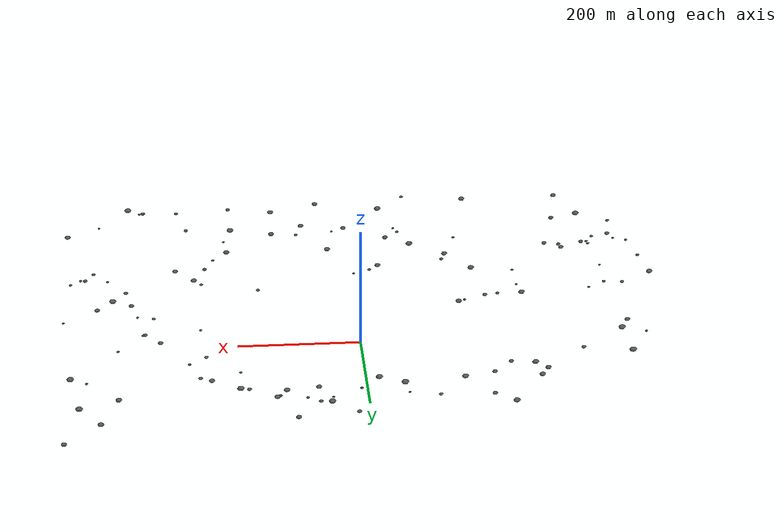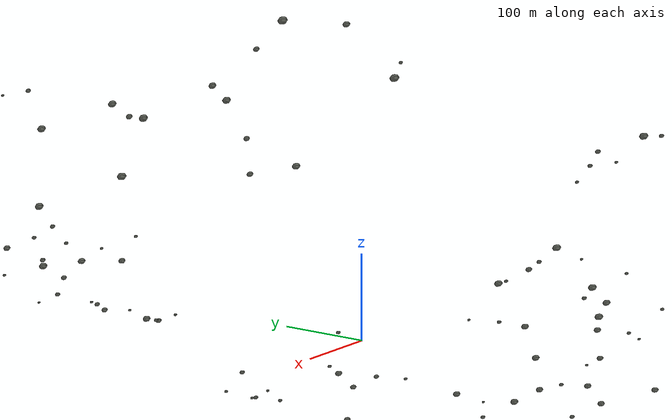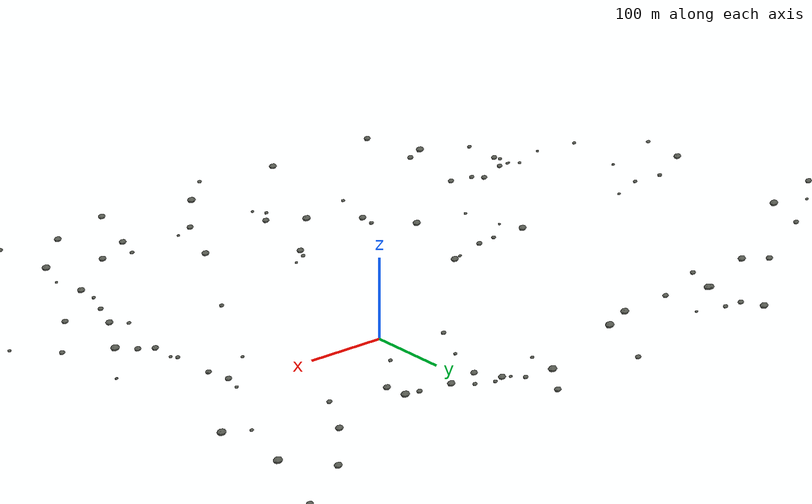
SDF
<?xml version='1.0' encoding='utf-8'?>
<sdf version="1.9">
  <model name="summit_boulders">
    <static>true</static>
    <link name="structure">
      <visual name="visual_rock">
        <geometry>
          <mesh>
            <uri>model://summit_boulders/meshes/visual/rock.dae</uri>
          </mesh>
        </geometry>
        <material>
          <ambient>0.34 0.355 0.32 1</ambient>
          <diffuse>0.34 0.355 0.32 1</diffuse>
          <specular>0.15 0.15 0.15 1</specular>
          <pbr>
            <metal>
              <roughness>0.8</roughness>
              <metalness>0.0</metalness>
            </metal>
          </pbr>
        </material>
      </visual>
      <collision name="outcrop_1">
        <geometry>
          <mesh>
            <uri>model://summit_boulders/meshes/collision/outcrop_1.dae</uri>
          </mesh>
        </geometry>
      </collision>
      <collision name="outcrop_2">
        <geometry>
          <mesh>
            <uri>model://summit_boulders/meshes/collision/outcrop_2.dae</uri>
          </mesh>
        </geometry>
      </collision>
      <collision name="outcrop_3">
        <geometry>
          <mesh>
            <uri>model://summit_boulders/meshes/collision/outcrop_3.dae</uri>
          </mesh>
        </geometry>
      </collision>
      <collision name="outcrop_6">
        <geometry>
          <mesh>
            <uri>model://summit_boulders/meshes/collision/outcrop_6.dae</uri>
          </mesh>
        </geometry>
      </collision>
      <collision name="outcrop_7">
        <geometry>
          <mesh>
            <uri>model://summit_boulders/meshes/collision/outcrop_7.dae</uri>
          </mesh>
        </geometry>
      </collision>
      <collision name="outcrop_8">
        <geometry>
          <mesh>
            <uri>model://summit_boulders/meshes/collision/outcrop_8.dae</uri>
          </mesh>
        </geometry>
      </collision>
      <collision name="outcrop_9">
        <geometry>
          <mesh>
            <uri>model://summit_boulders/meshes/collision/outcrop_9.dae</uri>
          </mesh>
        </geometry>
      </collision>
      <collision name="outcrop_10">
        <geometry>
          <mesh>
            <uri>model://summit_boulders/meshes/collision/outcrop_10.dae</uri>
          </mesh>
        </geometry>
      </collision>
      <collision name="outcrop_12">
        <geometry>
          <mesh>
            <uri>model://summit_boulders/meshes/collision/outcrop_12.dae</uri>
          </mesh>
        </geometry>
      </collision>
      <collision name="outcrop_14">
        <geometry>
          <mesh>
            <uri>model://summit_boulders/meshes/collision/outcrop_14.dae</uri>
          </mesh>
        </geometry>
      </collision>
      <collision name="outcrop_15">
        <geometry>
          <mesh>
            <uri>model://summit_boulders/meshes/collision/outcrop_15.dae</uri>
          </mesh>
        </geometry>
      </collision>
      <collision name="outcrop_16">
        <geometry>
          <mesh>
            <uri>model://summit_boulders/meshes/collision/outcrop_16.dae</uri>
          </mesh>
        </geometry>
      </collision>
      <collision name="outcrop_17">
        <geometry>
          <mesh>
            <uri>model://summit_boulders/meshes/collision/outcrop_17.dae</uri>
          </mesh>
        </geometry>
      </collision>
      <collision name="outcrop_18">
        <geometry>
          <mesh>
            <uri>model://summit_boulders/meshes/collision/outcrop_18.dae</uri>
          </mesh>
        </geometry>
      </collision>
      <collision name="outcrop_19">
        <geometry>
          <mesh>
            <uri>model://summit_boulders/meshes/collision/outcrop_19.dae</uri>
          </mesh>
        </geometry>
      </collision>
      <collision name="outcrop_20">
        <geometry>
          <mesh>
            <uri>model://summit_boulders/meshes/collision/outcrop_20.dae</uri>
          </mesh>
        </geometry>
      </collision>
      <collision name="outcrop_21">
        <geometry>
          <mesh>
            <uri>model://summit_boulders/meshes/collision/outcrop_21.dae</uri>
          </mesh>
        </geometry>
      </collision>
      <collision name="outcrop_23">
        <geometry>
          <mesh>
            <uri>model://summit_boulders/meshes/collision/outcrop_23.dae</uri>
          </mesh>
        </geometry>
      </collision>
      <collision name="outcrop_24">
        <geometry>
          <mesh>
            <uri>model://summit_boulders/meshes/collision/outcrop_24.dae</uri>
          </mesh>
        </geometry>
      </collision>
      <collision name="outcrop_25">
        <geometry>
          <mesh>
            <uri>model://summit_boulders/meshes/collision/outcrop_25.dae</uri>
          </mesh>
        </geometry>
      </collision>
      <collision name="outcrop_26">
        <geometry>
          <mesh>
            <uri>model://summit_boulders/meshes/collision/outcrop_26.dae</uri>
          </mesh>
        </geometry>
      </collision>
      <collision name="outcrop_27">
        <geometry>
          <mesh>
            <uri>model://summit_boulders/meshes/collision/outcrop_27.dae</uri>
          </mesh>
        </geometry>
      </collision>
      <collision name="outcrop_29">
        <geometry>
          <mesh>
            <uri>model://summit_boulders/meshes/collision/outcrop_29.dae</uri>
          </mesh>
        </geometry>
      </collision>
      <collision name="outcrop_30">
        <geometry>
          <mesh>
            <uri>model://summit_boulders/meshes/collision/outcrop_30.dae</uri>
          </mesh>
        </geometry>
      </collision>
      <collision name="outcrop_31">
        <geometry>
          <mesh>
            <uri>model://summit_boulders/meshes/collision/outcrop_31.dae</uri>
          </mesh>
        </geometry>
      </collision>
      <collision name="outcrop_32">
        <geometry>
          <mesh>
            <uri>model://summit_boulders/meshes/collision/outcrop_32.dae</uri>
          </mesh>
        </geometry>
      </collision>
      <collision name="outcrop_33">
        <geometry>
          <mesh>
            <uri>model://summit_boulders/meshes/collision/outcrop_33.dae</uri>
          </mesh>
        </geometry>
      </collision>
      <collision name="outcrop_34">
        <geometry>
          <mesh>
            <uri>model://summit_boulders/meshes/collision/outcrop_34.dae</uri>
          </mesh>
        </geometry>
      </collision>
      <collision name="outcrop_35">
        <geometry>
          <mesh>
            <uri>model://summit_boulders/meshes/collision/outcrop_35.dae</uri>
          </mesh>
        </geometry>
      </collision>
      <collision name="outcrop_36">
        <geometry>
          <mesh>
            <uri>model://summit_boulders/meshes/collision/outcrop_36.dae</uri>
          </mesh>
        </geometry>
      </collision>
      <collision name="outcrop_37">
        <geometry>
          <mesh>
            <uri>model://summit_boulders/meshes/collision/outcrop_37.dae</uri>
          </mesh>
        </geometry>
      </collision>
      <collision name="outcrop_39">
        <geometry>
          <mesh>
            <uri>model://summit_boulders/meshes/collision/outcrop_39.dae</uri>
          </mesh>
        </geometry>
      </collision>
      <collision name="outcrop_40">
        <geometry>
          <mesh>
            <uri>model://summit_boulders/meshes/collision/outcrop_40.dae</uri>
          </mesh>
        </geometry>
      </collision>
      <collision name="outcrop_41">
        <geometry>
          <mesh>
            <uri>model://summit_boulders/meshes/collision/outcrop_41.dae</uri>
          </mesh>
        </geometry>
      </collision>
      <collision name="outcrop_42">
        <geometry>
          <mesh>
            <uri>model://summit_boulders/meshes/collision/outcrop_42.dae</uri>
          </mesh>
        </geometry>
      </collision>
      <collision name="outcrop_43">
        <geometry>
          <mesh>
            <uri>model://summit_boulders/meshes/collision/outcrop_43.dae</uri>
          </mesh>
        </geometry>
      </collision>
      <collision name="outcrop_45">
        <geometry>
          <mesh>
            <uri>model://summit_boulders/meshes/collision/outcrop_45.dae</uri>
          </mesh>
        </geometry>
      </collision>
      <collision name="outcrop_47">
        <geometry>
          <mesh>
            <uri>model://summit_boulders/meshes/collision/outcrop_47.dae</uri>
          </mesh>
        </geometry>
      </collision>
      <collision name="outcrop_49">
        <geometry>
          <mesh>
            <uri>model://summit_boulders/meshes/collision/outcrop_49.dae</uri>
          </mesh>
        </geometry>
      </collision>
      <collision name="outcrop_50">
        <geometry>
          <mesh>
            <uri>model://summit_boulders/meshes/collision/outcrop_50.dae</uri>
          </mesh>
        </geometry>
      </collision>
      <collision name="outcrop_51">
        <geometry>
          <mesh>
            <uri>model://summit_boulders/meshes/collision/outcrop_51.dae</uri>
          </mesh>
        </geometry>
      </collision>
      <collision name="outcrop_52">
        <geometry>
          <mesh>
            <uri>model://summit_boulders/meshes/collision/outcrop_52.dae</uri>
          </mesh>
        </geometry>
      </collision>
      <collision name="outcrop_53">
        <geometry>
          <mesh>
            <uri>model://summit_boulders/meshes/collision/outcrop_53.dae</uri>
          </mesh>
        </geometry>
      </collision>
      <collision name="outcrop_54">
        <geometry>
          <mesh>
            <uri>model://summit_boulders/meshes/collision/outcrop_54.dae</uri>
          </mesh>
        </geometry>
      </collision>
      <collision name="outcrop_55">
        <geometry>
          <mesh>
            <uri>model://summit_boulders/meshes/collision/outcrop_55.dae</uri>
          </mesh>
        </geometry>
      </collision>
      <collision name="outcrop_56">
        <geometry>
          <mesh>
            <uri>model://summit_boulders/meshes/collision/outcrop_56.dae</uri>
          </mesh>
        </geometry>
      </collision>
      <collision name="outcrop_57">
        <geometry>
          <mesh>
            <uri>model://summit_boulders/meshes/collision/outcrop_57.dae</uri>
          </mesh>
        </geometry>
      </collision>
      <collision name="outcrop_58">
        <geometry>
          <mesh>
            <uri>model://summit_boulders/meshes/collision/outcrop_58.dae</uri>
          </mesh>
        </geometry>
      </collision>
      <collision name="outcrop_59">
        <geometry>
          <mesh>
            <uri>model://summit_boulders/meshes/collision/outcrop_59.dae</uri>
          </mesh>
        </geometry>
      </collision>
      <collision name="outcrop_60">
        <geometry>
          <mesh>
            <uri>model://summit_boulders/meshes/collision/outcrop_60.dae</uri>
          </mesh>
        </geometry>
      </collision>
      <collision name="outcrop_61">
        <geometry>
          <mesh>
            <uri>model://summit_boulders/meshes/collision/outcrop_61.dae</uri>
          </mesh>
        </geometry>
      </collision>
      <collision name="outcrop_62">
        <geometry>
          <mesh>
            <uri>model://summit_boulders/meshes/collision/outcrop_62.dae</uri>
          </mesh>
        </geometry>
      </collision>
      <collision name="outcrop_63">
        <geometry>
          <mesh>
            <uri>model://summit_boulders/meshes/collision/outcrop_63.dae</uri>
          </mesh>
        </geometry>
      </collision>
      <collision name="outcrop_64">
        <geometry>
          <mesh>
            <uri>model://summit_boulders/meshes/collision/outcrop_64.dae</uri>
          </mesh>
        </geometry>
      </collision>
      <collision name="outcrop_66">
        <geometry>
          <mesh>
            <uri>model://summit_boulders/meshes/collision/outcrop_66.dae</uri>
          </mesh>
        </geometry>
      </collision>
      <collision name="outcrop_67">
        <geometry>
          <mesh>
            <uri>model://summit_boulders/meshes/collision/outcrop_67.dae</uri>
          </mesh>
        </geometry>
      </collision>
      <collision name="outcrop_68">
        <geometry>
          <mesh>
            <uri>model://summit_boulders/meshes/collision/outcrop_68.dae</uri>
          </mesh>
        </geometry>
      </collision>
      <collision name="outcrop_69">
        <geometry>
          <mesh>
            <uri>model://summit_boulders/meshes/collision/outcrop_69.dae</uri>
          </mesh>
        </geometry>
      </collision>
      <collision name="outcrop_70">
        <geometry>
          <mesh>
            <uri>model://summit_boulders/meshes/collision/outcrop_70.dae</uri>
          </mesh>
        </geometry>
      </collision>
      <collision name="outcrop_71">
        <geometry>
          <mesh>
            <uri>model://summit_boulders/meshes/collision/outcrop_71.dae</uri>
          </mesh>
        </geometry>
      </collision>
      <collision name="outcrop_72">
        <geometry>
          <mesh>
            <uri>model://summit_boulders/meshes/collision/outcrop_72.dae</uri>
          </mesh>
        </geometry>
      </collision>
      <collision name="outcrop_73">
        <geometry>
          <mesh>
            <uri>model://summit_boulders/meshes/collision/outcrop_73.dae</uri>
          </mesh>
        </geometry>
      </collision>
      <collision name="outcrop_74">
        <geometry>
          <mesh>
            <uri>model://summit_boulders/meshes/collision/outcrop_74.dae</uri>
          </mesh>
        </geometry>
      </collision>
      <collision name="outcrop_75">
        <geometry>
          <mesh>
            <uri>model://summit_boulders/meshes/collision/outcrop_75.dae</uri>
          </mesh>
        </geometry>
      </collision>
      <collision name="outcrop_76">
        <geometry>
          <mesh>
            <uri>model://summit_boulders/meshes/collision/outcrop_76.dae</uri>
          </mesh>
        </geometry>
      </collision>
      <collision name="outcrop_77">
        <geometry>
          <mesh>
            <uri>model://summit_boulders/meshes/collision/outcrop_77.dae</uri>
          </mesh>
        </geometry>
      </collision>
      <collision name="outcrop_78">
        <geometry>
          <mesh>
            <uri>model://summit_boulders/meshes/collision/outcrop_78.dae</uri>
          </mesh>
        </geometry>
      </collision>
      <collision name="outcrop_79">
        <geometry>
          <mesh>
            <uri>model://summit_boulders/meshes/collision/outcrop_79.dae</uri>
          </mesh>
        </geometry>
      </collision>
      <collision name="outcrop_81">
        <geometry>
          <mesh>
            <uri>model://summit_boulders/meshes/collision/outcrop_81.dae</uri>
          </mesh>
        </geometry>
      </collision>
      <collision name="outcrop_82">
        <geometry>
          <mesh>
            <uri>model://summit_boulders/meshes/collision/outcrop_82.dae</uri>
          </mesh>
        </geometry>
      </collision>
      <collision name="outcrop_84">
        <geometry>
          <mesh>
            <uri>model://summit_boulders/meshes/collision/outcrop_84.dae</uri>
          </mesh>
        </geometry>
      </collision>
      <collision name="outcrop_85">
        <geometry>
          <mesh>
            <uri>model://summit_boulders/meshes/collision/outcrop_85.dae</uri>
          </mesh>
        </geometry>
      </collision>
      <collision name="outcrop_86">
        <geometry>
          <mesh>
            <uri>model://summit_boulders/meshes/collision/outcrop_86.dae</uri>
          </mesh>
        </geometry>
      </collision>
      <collision name="outcrop_87">
        <geometry>
          <mesh>
            <uri>model://summit_boulders/meshes/collision/outcrop_87.dae</uri>
          </mesh>
        </geometry>
      </collision>
      <collision name="outcrop_88">
        <geometry>
          <mesh>
            <uri>model://summit_boulders/meshes/collision/outcrop_88.dae</uri>
          </mesh>
        </geometry>
      </collision>
      <collision name="outcrop_89">
        <geometry>
          <mesh>
            <uri>model://summit_boulders/meshes/collision/outcrop_89.dae</uri>
          </mesh>
        </geometry>
      </collision>
      <collision name="outcrop_90">
        <geometry>
          <mesh>
            <uri>model://summit_boulders/meshes/collision/outcrop_90.dae</uri>
          </mesh>
        </geometry>
      </collision>
      <collision name="outcrop_91">
        <geometry>
          <mesh>
            <uri>model://summit_boulders/meshes/collision/outcrop_91.dae</uri>
          </mesh>
        </geometry>
      </collision>
      <collision name="outcrop_92">
        <geometry>
          <mesh>
            <uri>model://summit_boulders/meshes/collision/outcrop_92.dae</uri>
          </mesh>
        </geometry>
      </collision>
      <collision name="outcrop_93">
        <geometry>
          <mesh>
            <uri>model://summit_boulders/meshes/collision/outcrop_93.dae</uri>
          </mesh>
        </geometry>
      </collision>
      <collision name="outcrop_95">
        <geometry>
          <mesh>
            <uri>model://summit_boulders/meshes/collision/outcrop_95.dae</uri>
          </mesh>
        </geometry>
      </collision>
      <collision name="outcrop_96">
        <geometry>
          <mesh>
            <uri>model://summit_boulders/meshes/collision/outcrop_96.dae</uri>
          </mesh>
        </geometry>
      </collision>
      <collision name="outcrop_97">
        <geometry>
          <mesh>
            <uri>model://summit_boulders/meshes/collision/outcrop_97.dae</uri>
          </mesh>
        </geometry>
      </collision>
      <collision name="outcrop_98">
        <geometry>
          <mesh>
            <uri>model://summit_boulders/meshes/collision/outcrop_98.dae</uri>
          </mesh>
        </geometry>
      </collision>
      <collision name="outcrop_100">
        <geometry>
          <mesh>
            <uri>model://summit_boulders/meshes/collision/outcrop_100.dae</uri>
          </mesh>
        </geometry>
      </collision>
      <collision name="outcrop_101">
        <geometry>
          <mesh>
            <uri>model://summit_boulders/meshes/collision/outcrop_101.dae</uri>
          </mesh>
        </geometry>
      </collision>
      <collision name="outcrop_102">
        <geometry>
          <mesh>
            <uri>model://summit_boulders/meshes/collision/outcrop_102.dae</uri>
          </mesh>
        </geometry>
      </collision>
      <collision name="outcrop_103">
        <geometry>
          <mesh>
            <uri>model://summit_boulders/meshes/collision/outcrop_103.dae</uri>
          </mesh>
        </geometry>
      </collision>
      <collision name="outcrop_104">
        <geometry>
          <mesh>
            <uri>model://summit_boulders/meshes/collision/outcrop_104.dae</uri>
          </mesh>
        </geometry>
      </collision>
      <collision name="outcrop_106">
        <geometry>
          <mesh>
            <uri>model://summit_boulders/meshes/collision/outcrop_106.dae</uri>
          </mesh>
        </geometry>
      </collision>
      <collision name="outcrop_107">
        <geometry>
          <mesh>
            <uri>model://summit_boulders/meshes/collision/outcrop_107.dae</uri>
          </mesh>
        </geometry>
      </collision>
      <collision name="outcrop_108">
        <geometry>
          <mesh>
            <uri>model://summit_boulders/meshes/collision/outcrop_108.dae</uri>
          </mesh>
        </geometry>
      </collision>
      <collision name="outcrop_109">
        <geometry>
          <mesh>
            <uri>model://summit_boulders/meshes/collision/outcrop_109.dae</uri>
          </mesh>
        </geometry>
      </collision>
      <collision name="outcrop_110">
        <geometry>
          <mesh>
            <uri>model://summit_boulders/meshes/collision/outcrop_110.dae</uri>
          </mesh>
        </geometry>
      </collision>
      <collision name="outcrop_111">
        <geometry>
          <mesh>
            <uri>model://summit_boulders/meshes/collision/outcrop_111.dae</uri>
          </mesh>
        </geometry>
      </collision>
      <collision name="outcrop_113">
        <geometry>
          <mesh>
            <uri>model://summit_boulders/meshes/collision/outcrop_113.dae</uri>
          </mesh>
        </geometry>
      </collision>
      <collision name="outcrop_114">
        <geometry>
          <mesh>
            <uri>model://summit_boulders/meshes/collision/outcrop_114.dae</uri>
          </mesh>
        </geometry>
      </collision>
      <collision name="outcrop_115">
        <geometry>
          <mesh>
            <uri>model://summit_boulders/meshes/collision/outcrop_115.dae</uri>
          </mesh>
        </geometry>
      </collision>
      <collision name="outcrop_116">
        <geometry>
          <mesh>
            <uri>model://summit_boulders/meshes/collision/outcrop_116.dae</uri>
          </mesh>
        </geometry>
      </collision>
      <collision name="outcrop_118">
        <geometry>
          <mesh>
            <uri>model://summit_boulders/meshes/collision/outcrop_118.dae</uri>
          </mesh>
        </geometry>
      </collision>
      <collision name="outcrop_119">
        <geometry>
          <mesh>
            <uri>model://summit_boulders/meshes/collision/outcrop_119.dae</uri>
          </mesh>
        </geometry>
      </collision>
      <collision name="outcrop_120">
        <geometry>
          <mesh>
            <uri>model://summit_boulders/meshes/collision/outcrop_120.dae</uri>
          </mesh>
        </geometry>
      </collision>
      <collision name="outcrop_122">
        <geometry>
          <mesh>
            <uri>model://summit_boulders/meshes/collision/outcrop_122.dae</uri>
          </mesh>
        </geometry>
      </collision>
      <collision name="outcrop_123">
        <geometry>
          <mesh>
            <uri>model://summit_boulders/meshes/collision/outcrop_123.dae</uri>
          </mesh>
        </geometry>
      </collision>
      <collision name="outcrop_124">
        <geometry>
          <mesh>
            <uri>model://summit_boulders/meshes/collision/outcrop_124.dae</uri>
          </mesh>
        </geometry>
      </collision>
      <collision name="outcrop_125">
        <geometry>
          <mesh>
            <uri>model://summit_boulders/meshes/collision/outcrop_125.dae</uri>
          </mesh>
        </geometry>
      </collision>
      <collision name="outcrop_127">
        <geometry>
          <mesh>
            <uri>model://summit_boulders/meshes/collision/outcrop_127.dae</uri>
          </mesh>
        </geometry>
      </collision>
      <collision name="outcrop_129">
        <geometry>
          <mesh>
            <uri>model://summit_boulders/meshes/collision/outcrop_129.dae</uri>
          </mesh>
        </geometry>
      </collision>
      <collision name="outcrop_130">
        <geometry>
          <mesh>
            <uri>model://summit_boulders/meshes/collision/outcrop_130.dae</uri>
          </mesh>
        </geometry>
      </collision>
      <collision name="outcrop_132">
        <geometry>
          <mesh>
            <uri>model://summit_boulders/meshes/collision/outcrop_132.dae</uri>
          </mesh>
        </geometry>
      </collision>
      <collision name="outcrop_133">
        <geometry>
          <mesh>
            <uri>model://summit_boulders/meshes/collision/outcrop_133.dae</uri>
          </mesh>
        </geometry>
      </collision>
      <collision name="outcrop_134">
        <geometry>
          <mesh>
            <uri>model://summit_boulders/meshes/collision/outcrop_134.dae</uri>
          </mesh>
        </geometry>
      </collision>
      <collision name="outcrop_135">
        <geometry>
          <mesh>
            <uri>model://summit_boulders/meshes/collision/outcrop_135.dae</uri>
          </mesh>
        </geometry>
      </collision>
      <collision name="outcrop_137">
        <geometry>
          <mesh>
            <uri>model://summit_boulders/meshes/collision/outcrop_137.dae</uri>
          </mesh>
        </geometry>
      </collision>
      <collision name="outcrop_138">
        <geometry>
          <mesh>
            <uri>model://summit_boulders/meshes/collision/outcrop_138.dae</uri>
          </mesh>
        </geometry>
      </collision>
      <collision name="outcrop_139">
        <geometry>
          <mesh>
            <uri>model://summit_boulders/meshes/collision/outcrop_139.dae</uri>
          </mesh>
        </geometry>
      </collision>
      <collision name="outcrop_140">
        <geometry>
          <mesh>
            <uri>model://summit_boulders/meshes/collision/outcrop_140.dae</uri>
          </mesh>
        </geometry>
      </collision>
      <collision name="outcrop_141">
        <geometry>
          <mesh>
            <uri>model://summit_boulders/meshes/collision/outcrop_141.dae</uri>
          </mesh>
        </geometry>
      </collision>
      <collision name="outcrop_143">
        <geometry>
          <mesh>
            <uri>model://summit_boulders/meshes/collision/outcrop_143.dae</uri>
          </mesh>
        </geometry>
      </collision>
      <collision name="outcrop_144">
        <geometry>
          <mesh>
            <uri>model://summit_boulders/meshes/collision/outcrop_144.dae</uri>
          </mesh>
        </geometry>
      </collision>
      <collision name="outcrop_145">
        <geometry>
          <mesh>
            <uri>model://summit_boulders/meshes/collision/outcrop_145.dae</uri>
          </mesh>
        </geometry>
      </collision>
      <collision name="outcrop_146">
        <geometry>
          <mesh>
            <uri>model://summit_boulders/meshes/collision/outcrop_146.dae</uri>
          </mesh>
        </geometry>
      </collision>
      <collision name="outcrop_147">
        <geometry>
          <mesh>
            <uri>model://summit_boulders/meshes/collision/outcrop_147.dae</uri>
          </mesh>
        </geometry>
      </collision>
      <collision name="outcrop_148">
        <geometry>
          <mesh>
            <uri>model://summit_boulders/meshes/collision/outcrop_148.dae</uri>
          </mesh>
        </geometry>
      </collision>
      <collision name="outcrop_149">
        <geometry>
          <mesh>
            <uri>model://summit_boulders/meshes/collision/outcrop_149.dae</uri>
          </mesh>
        </geometry>
      </collision>
    </link>
  </model>
</sdf>
